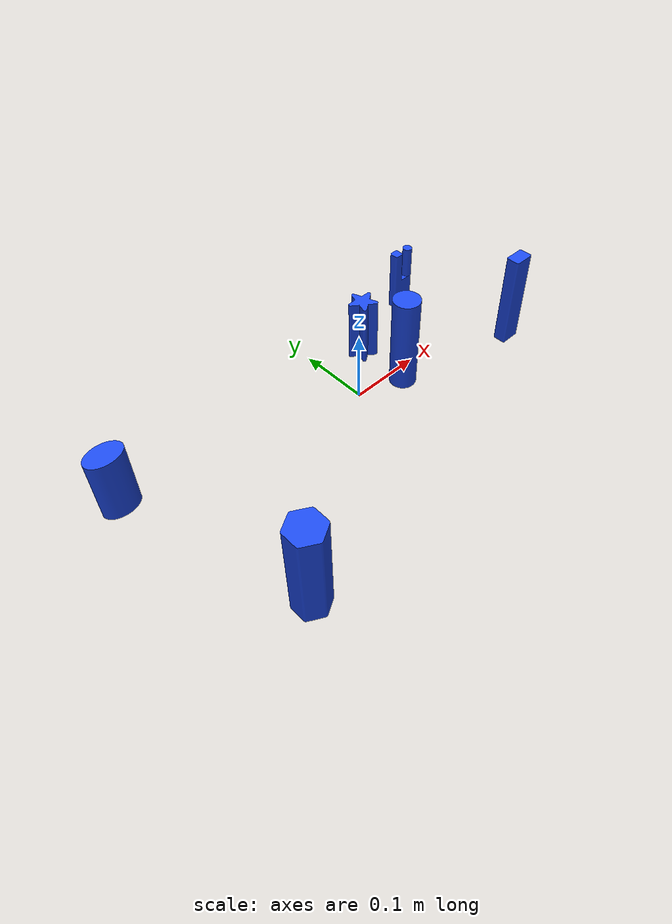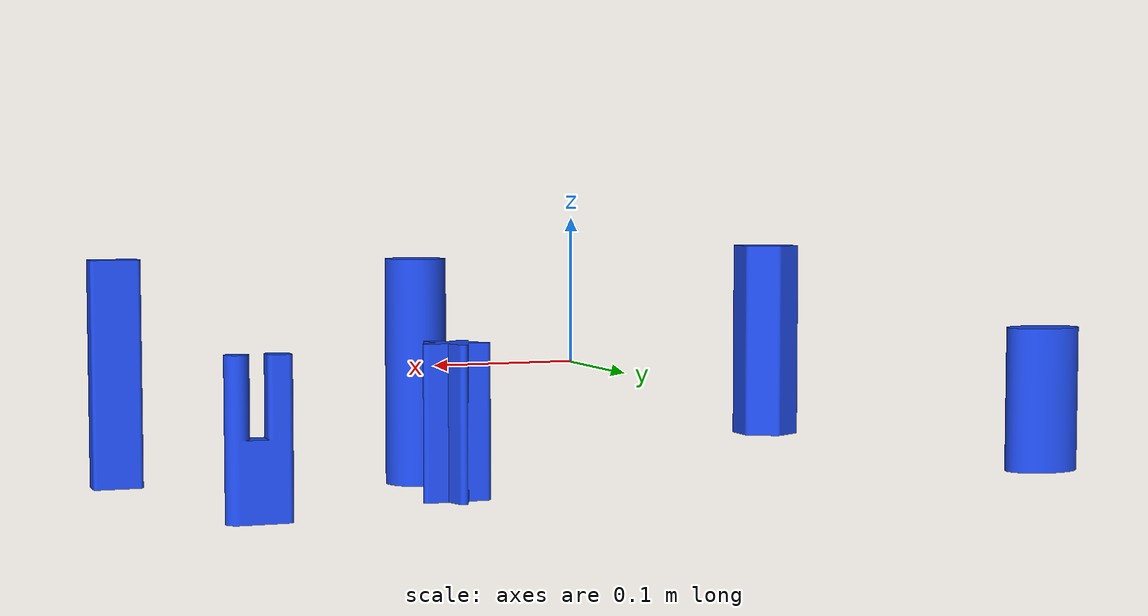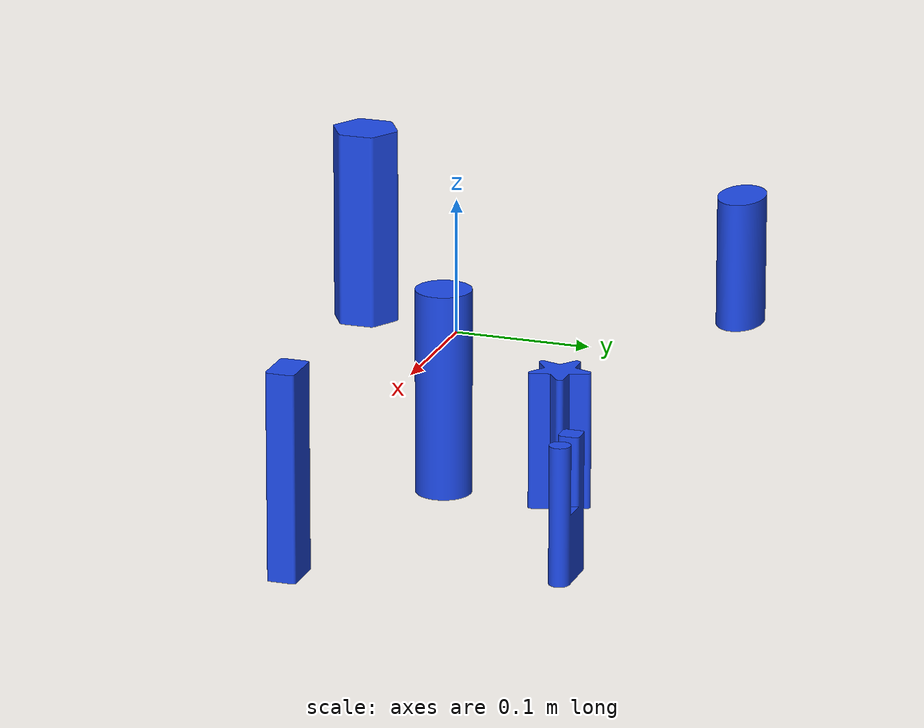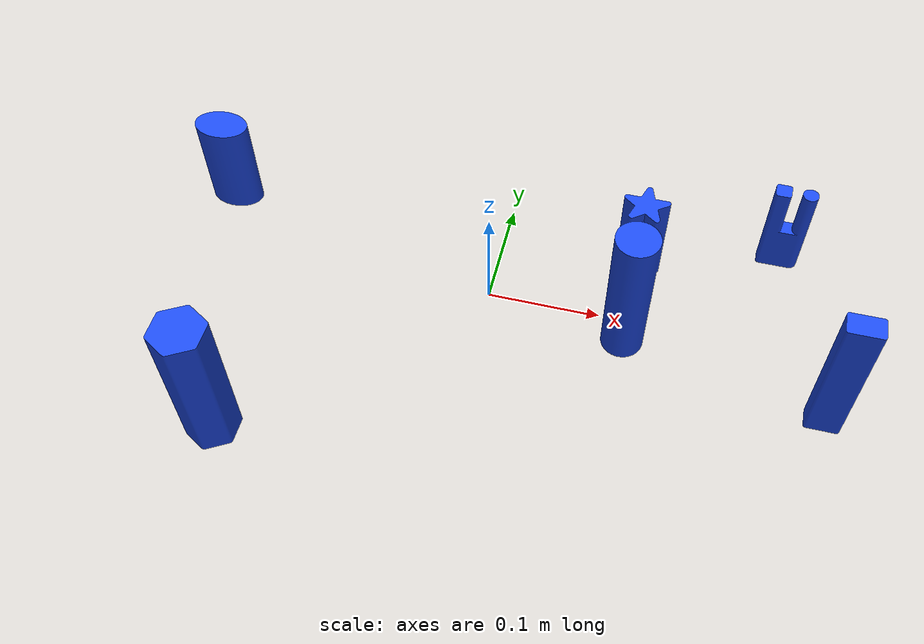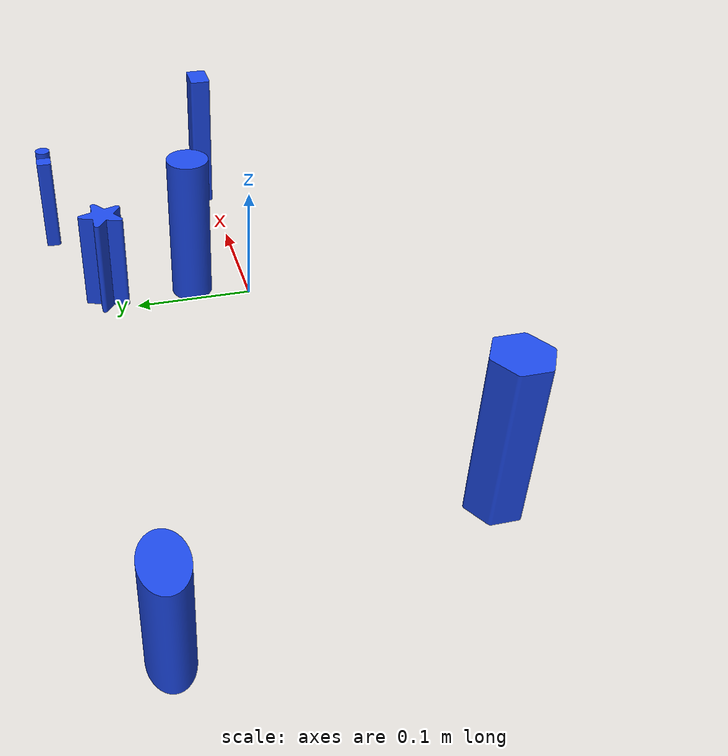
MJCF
<?xml version='1.0' encoding='utf-8'?>
<mujoco model="obj8">
  <asset>
    <mesh name="obj8" file="obj8.obj" scale="0.001 0.001 0.001" />
    <material name="mat8" rgba="0.11373 0.2902 0.92157 1" />
  </asset>
  <worldbody>
    <body>
      <body name="object">
        <geom name="visual" mesh="obj8" type="mesh" group="1" contype="0" conaffinity="0" material="mat8" />
        <geom name="collision" mesh="obj8" type="mesh" group="0" density="50" friction="0.95 0.3 0.1" solimp="0.998 0.998 0.001" solref="0.001 1" condim="4" />
      </body>
      <site name="bottom_site" pos="0 0 -0.025" size="0.005" rgba="0 0 0 0" />
      <site name="top_site" pos="0 0 0.025" size="0.005" rgba="0 0 0 0" />
      <site name="horizontal_radius_site" pos="0.03 0.03 0" size="0.005" rgba="0 0 0 0" />
    </body>
  </worldbody>
</mujoco>
